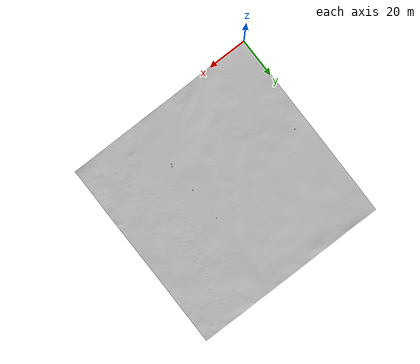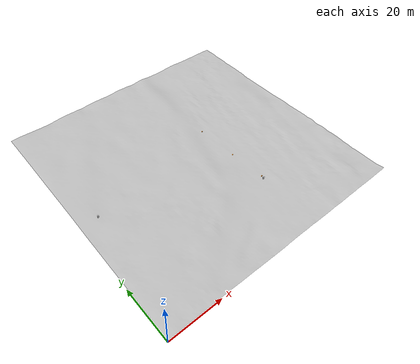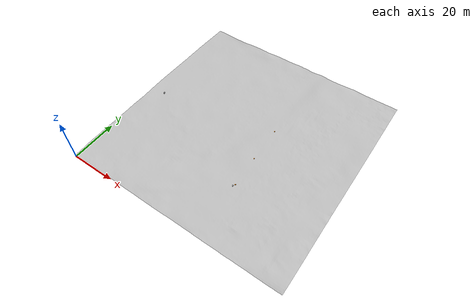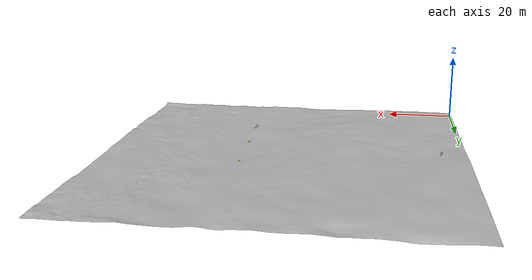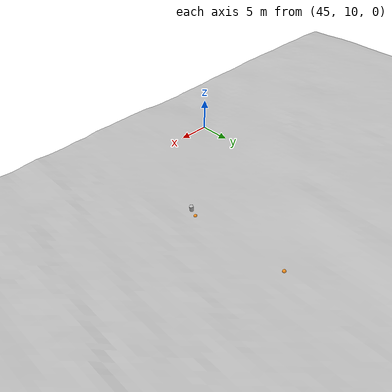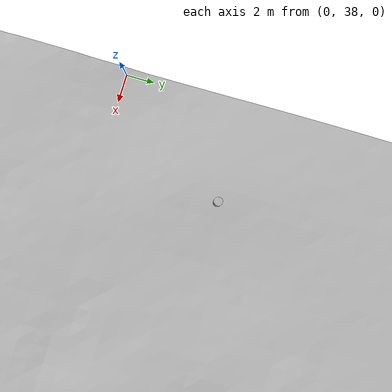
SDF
<sdf version="1.4">
 <world name="default">
  <include><uri>model://sun</uri></include>
  <scene>
   <sky><time>10</time><clouds><speed>5</speed><direction>1.14</direction><humidity>0.3</humidity></clouds></sky>
  </scene>
  <include><uri>model://nisuy100x100x2</uri></include>
  <include>
   <uri>model://barrel1</uri>
   <pose>6.9422 46.7042 1.59873 -0.0480106 0.0681706 1.17807</pose>
   <scale>1 1 1</scale>
   <name>object0</name>
  </include>
  <include>
   <uri>model://barrel1</uri>
   <pose>61.6161 24.5029 0.703203 -0.0829537 0.0903425 -0.91805</pose>
   <scale>1 1 1</scale>
   <name>obstacle_on_path0</name>
  </include>
  <include><uri>model://wp_mark</uri><pose>62.0812 25.6921 0.815686 0 0 0</pose><name>wp_mark0</name></include>
  <include><uri>model://wp_mark</uri><pose>61.1737 40.0351 0.839216 0 0 0</pose><name>wp_mark1</name></include>
  <include><uri>model://wp_mark</uri><pose>60.4422 56.9654 0.917647 0 0 0</pose><name>wp_mark2</name></include>
 </world>
</sdf>

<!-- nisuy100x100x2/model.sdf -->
<sdf version="1.4">
    <model name="terrain">
        <static>true</static>
        <link name="terrain1">
            <pose>0 0 0 0 0 0</pose>
            <collision name="terrain1_collision">
                <geometry>
                    <mesh>
                        <uri>model://nisuy100x100x2/meshes/terrain1.dae</uri>
                    </mesh>
                </geometry>
            </collision>
            <visual name="terrain1_visual">
                <geometry>
                    <mesh>
                        <uri>model://nisuy100x100x2/meshes/terrain1.dae</uri>
                    </mesh>
                </geometry>
                <material>
                    <script>
                        <uri>model://nisuy100x100x2/materials/scripts</uri>
                        <uri>model://nisuy100x100x2/materials/textures</uri>
                        <name>terrain/terrain1</name>
                    </script>
                </material>
            </visual>
        </link>
    </model>
</sdf>

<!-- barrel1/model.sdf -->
<sdf version="1.4">
  <model name="barrel1">
    <static>true</static>
    <link name="link">
      <collision name="collision">
        <geometry>
          <mesh>
		<uri>model://barrel1/models/barrel1.dae</uri>
          </mesh>
        </geometry>
      </collision>
      <visual name="visual">
         <geometry>
          <mesh>
		<uri>model://barrel1/models/barrel1.dae</uri>
          </mesh>
        </geometry>
      </visual>
    </link>
  </model>
</sdf>

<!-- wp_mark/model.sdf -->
<sdf version="1.4">
    <model name="wp_sphere_mark">
      <static>true</static>
      <link name="link1">
        <visual name="visual">
          <geometry>
            <sphere>
              <radius>0.25</radius>
            </sphere>
          </geometry>
      <material>
          <script>
            <uri>file://media/materials/scripts/gazebo.material</uri>
            <name>Gazebo/Orange</name>
          </script>
        </material>
        </visual>
      </link>
    </model>
</sdf>
